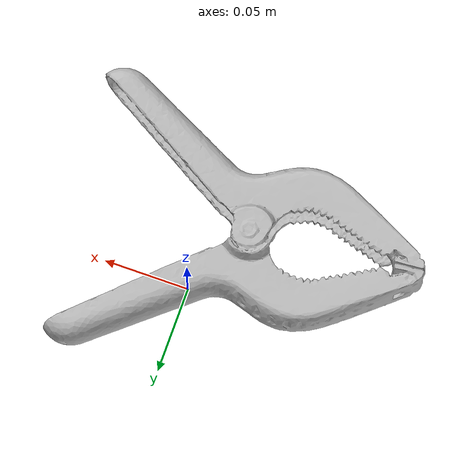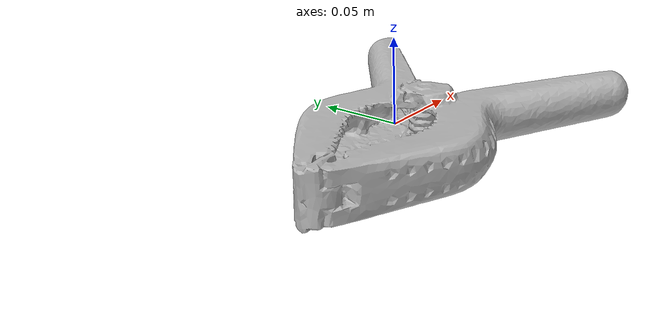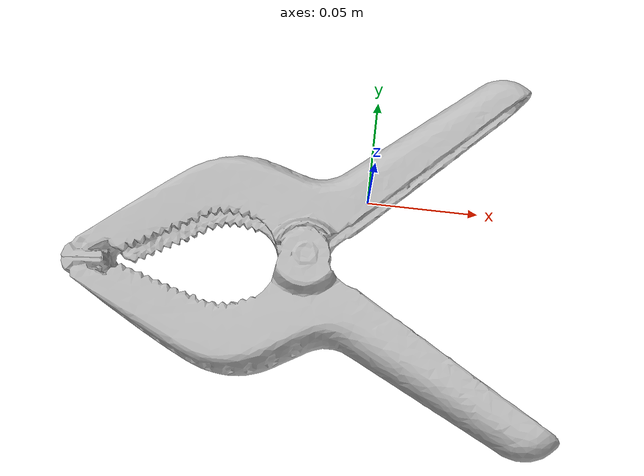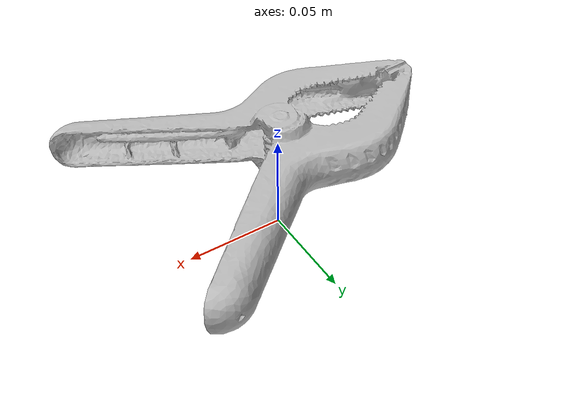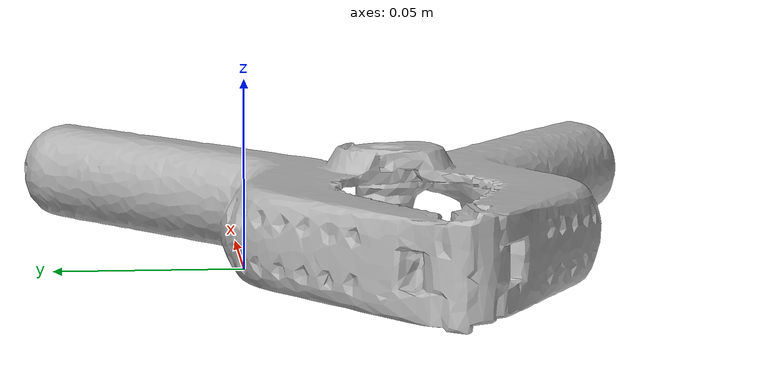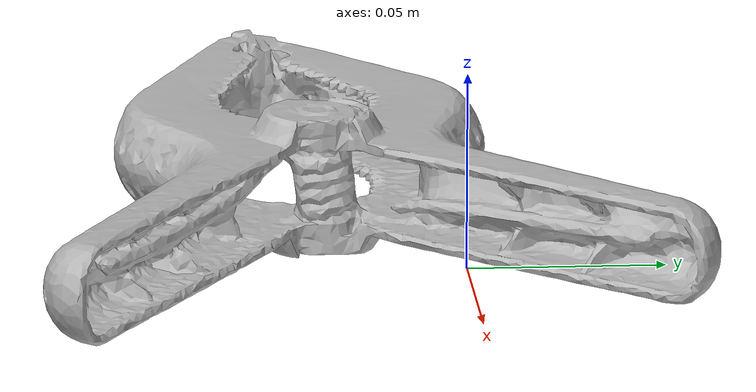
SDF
<?xml version='1.0'?>
<sdf version="1.4">
  <model name="extra_large_clamp">
    <static>false</static>
    <link name="link">
      <inertial>
        <pose>-0.02954993396051727 -0.03660538138997692 0.018078943770709874 1.5611908920575797 -1.5631769305230083 -1.4359341346348413</pose>
        <mass>0.00012182985035855602</mass>
        <inertia>
          <ixx>4.640163014743359e-07</ixx>
          <ixy>-5.291318287789916e-24</ixy>
          <ixz>7.622734785012409e-25</ixz>
          <iyy>3.031043353582763e-07</iyy>
          <iyz>-4.862884043852855e-23</iyz>
          <izz>1.7741274845683927e-07</izz>
        </inertia>
      </inertial>
      <collision name="collision">
        <geometry>
          <mesh>
            <!-- Use a downsampled mesh for collisions -->
            <uri>model://052_extra_large_clamp/google_16k/052_extra_large_clamp.obj</uri>
            </mesh>
        </geometry>
        <surface>
          <friction>
            <ode>
              <mu>0.9</mu>
              <mu2>0.9</mu2>
            </ode>
          </friction>
          <contact>
            <ode>
              <kp>1000000000000.0</kp>
              <kd>1</kd>
              <min_depth>0.0001</min_depth>
              <max_vel>0.01</max_vel>
            </ode>
          </contact>
          <bounce>
            <restitution_coefficient>0.1</restitution_coefficient>
            <threshold>1000.0</threshold>
          </bounce>
        </surface>
      </collision>
      <visual name="visual">
        <geometry>
          <mesh>
            <uri>model://052_extra_large_clamp/google_16k/052_extra_large_clamp.dae</uri>
            </mesh>
        </geometry>
      </visual>
    </link>
  </model>
</sdf>
